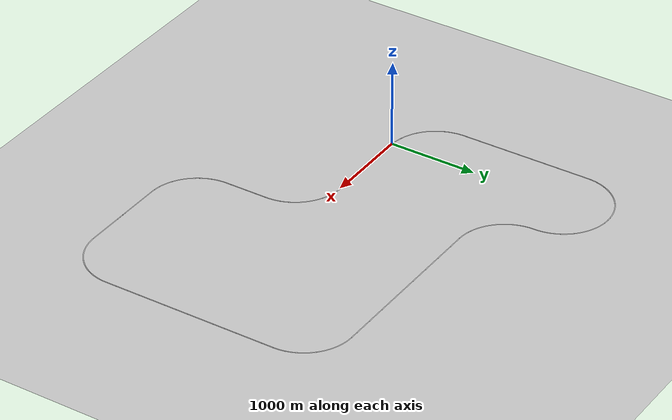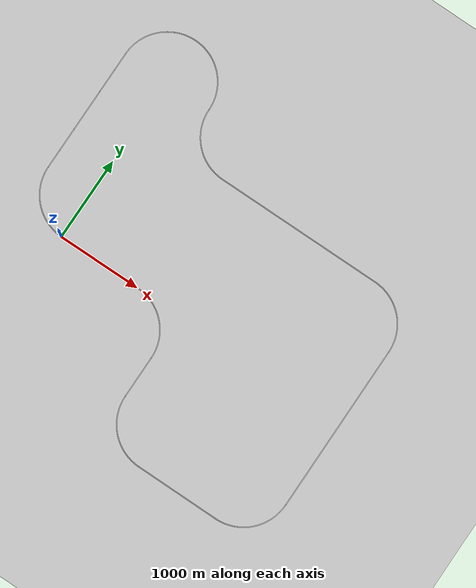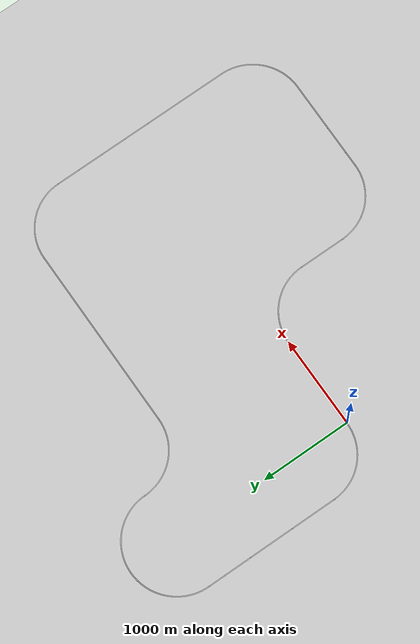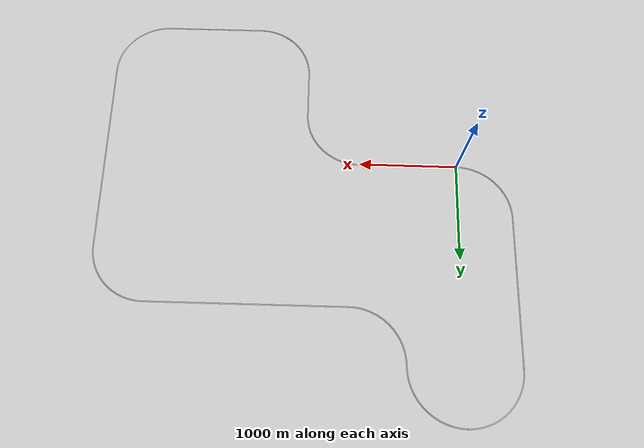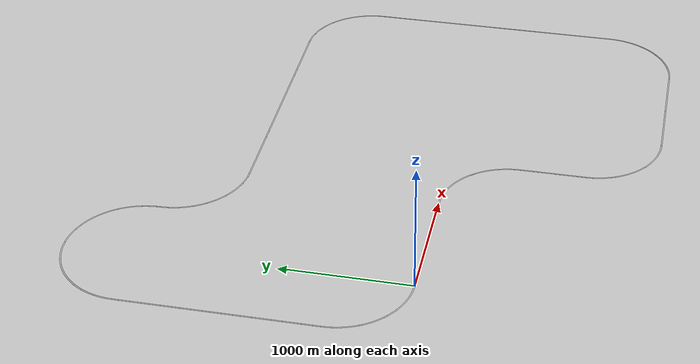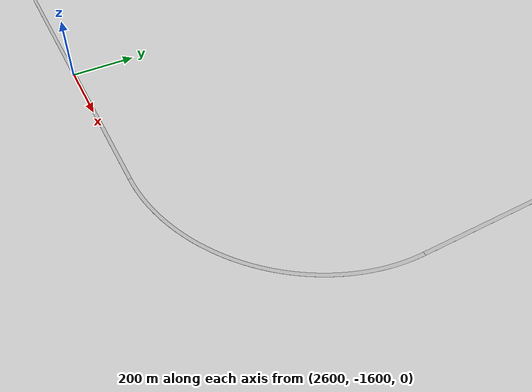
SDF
<sdf version="1.6">
 <world name="default">
  <light name="sun" type="directional">
   <pose>95.0196 103.283 10 0 -0 0</pose>
   <diffuse>0.8 0.8 0.8 1</diffuse>
   <specular>0.2 0.2 0.2 1</specular>
   <attenuation>
    <range>1000</range>
    <constant>0.9</constant>
    <linear>0.01</linear>
    <quadratic>0.001</quadratic>
   </attenuation>
   <direction>-0.5 0.1 -0.9</direction>
  </light>
  <gravity>0 0 -9.8</gravity>
  <magnetic_field>6e-06 2.3e-05 -4.2e-05</magnetic_field>
  <atmosphere type="adiabatic"/>
  <physics name="default_physics" default="0" type="ode">
   <max_step_size>0.001</max_step_size>
   <real_time_factor>1</real_time_factor>
   <real_time_update_rate>1000</real_time_update_rate>
  </physics>
  <scene><ambient>0.4 0.4 0.4 1</ambient><background>0.7 0.7 0.7 1</background><shadows>1</shadows></scene>
  <audio><device>default</device></audio>
  <spherical_coordinates>
   <surface_model>EARTH_WGS84</surface_model>
   <latitude_deg>0</latitude_deg>
   <longitude_deg>0</longitude_deg>
   <elevation>0</elevation>
   <heading_deg>0</heading_deg>
  </spherical_coordinates>
  <model name="ground_plane">
   <static>1</static>
   <link name="link">
    <collision name="collision">
     <geometry><plane><normal>0 0 1</normal><size>100 100</size></plane></geometry>
     <surface><friction><ode><mu>100</mu><mu2>50</mu2></ode></friction></surface>
    </collision>
    <visual name="visual">
     <cast_shadows>0</cast_shadows>
     <geometry><plane><normal>0 0 1</normal><size>10000 10000</size></plane></geometry>
     <material>
      <script><uri>file://media/materials/scripts/gazebo.material</uri><name>Gazebo/Grey</name></script>
     </material>
    </visual>
   </link>
  </model>
  <model name="(DS) Straight Road - 500m">
   <static>1</static>
   <link name="link">
    <inertial>
     <mass>1</mass>
     <inertia><ixx>1</ixx><iyy>1</iyy><izz>1</izz><ixy>0</ixy><ixz>0</ixz><iyz>0</iyz></inertia>
    </inertial>
    <collision name="collision">
     <geometry><mesh><uri>model://ds_straight_road_500m/meshes/straight_road_500m.dae</uri></mesh></geometry>
    </collision>
    <visual name="visual">
     <geometry><mesh><uri>model://ds_straight_road_500m/meshes/straight_road_500m.dae</uri></mesh></geometry>
    </visual>
   </link>
   <pose>249.987 12.203 0 0 -0 0</pose>
  </model>
  <model name="(DS) Straight Road - 500m_0">
   <static>1</static>
   <link name="link">
    <inertial>
     <mass>1</mass>
     <inertia><ixx>1</ixx><iyy>1</iyy><izz>1</izz><ixy>0</ixy><ixz>0</ixz><iyz>0</iyz></inertia>
    </inertial>
    <collision name="collision">
     <geometry><mesh><uri>model://ds_straight_road_500m/meshes/straight_road_500m.dae</uri></mesh></geometry>
    </collision>
    <visual name="visual">
     <geometry><mesh><uri>model://ds_straight_road_500m/meshes/straight_road_500m.dae</uri></mesh></geometry>
    </visual>
   </link>
   <pose>749.987 12.203 0 0 -0 0</pose>
  </model>
  <model name="(DS) Right Road - 1000m">
   <static>1</static>
   <link name="link">
    <inertial>
     <mass>1</mass>
     <inertia><ixx>1</ixx><iyy>1</iyy><izz>1</izz><ixy>0</ixy><ixz>0</ixz><iyz>0</iyz></inertia>
    </inertial>
    <collision name="collision">
     <geometry><mesh><uri>model://ds_right_road_1000m/meshes/curved_road_1000m.dae</uri></mesh></geometry>
    </collision>
    <visual name="visual">
     <geometry><mesh><uri>model://ds_right_road_1000m/meshes/curved_road_1000m.dae</uri></mesh></geometry>
    </visual>
   </link>
   <pose>1277.65 -269.962 0 0 -0 1.5708</pose>
  </model>
  <model name="(DS) Straight Road - 500m_1">
   <static>1</static>
   <link name="link">
    <inertial>
     <mass>1</mass>
     <inertia><ixx>1</ixx><iyy>1</iyy><izz>1</izz><ixy>0</ixy><ixz>0</ixz><iyz>0</iyz></inertia>
    </inertial>
    <collision name="collision">
     <geometry><mesh><uri>model://ds_straight_road_500m/meshes/straight_road_500m.dae</uri></mesh></geometry>
    </collision>
    <visual name="visual">
     <geometry><mesh><uri>model://ds_straight_road_500m/meshes/straight_road_500m.dae</uri></mesh></geometry>
    </visual>
   </link>
   <pose>1559.82 -797.627 0 0 0 -1.5708</pose>
  </model>
  <model name="(DS) Left Road - 1000m">
   <static>1</static>
   <link name="link">
    <inertial>
     <mass>1</mass>
     <inertia><ixx>1</ixx><iyy>1</iyy><izz>1</izz><ixy>0</ixy><ixz>0</ixz><iyz>0</iyz></inertia>
    </inertial>
    <collision name="collision">
     <geometry><mesh><uri>model://ds_left_road_1000m/meshes/curved_road_1000m.dae</uri></mesh></geometry>
    </collision>
    <visual name="visual">
     <geometry><mesh><uri>model://ds_left_road_1000m/meshes/curved_road_1000m.dae</uri></mesh></geometry>
    </visual>
   </link>
   <pose>1821.98 -1325.29 0 0 0 -1.5708</pose>
  </model>
  <model name="(DS) Straight Road - 500m_2">
   <static>1</static>
   <link name="link">
    <inertial>
     <mass>1</mass>
     <inertia><ixx>1</ixx><iyy>1</iyy><izz>1</izz><ixy>0</ixy><ixz>0</ixz><iyz>0</iyz></inertia>
    </inertial>
    <collision name="collision">
     <geometry><mesh><uri>model://ds_straight_road_500m/meshes/straight_road_500m.dae</uri></mesh></geometry>
    </collision>
    <visual name="visual">
     <geometry><mesh><uri>model://ds_straight_road_500m/meshes/straight_road_500m.dae</uri></mesh></geometry>
    </visual>
   </link>
   <pose>2349.65 -1587.46 0 0 -0 0</pose>
  </model>
  <model name="(DS) Straight Road - 500m_3">
   <static>1</static>
   <link name="link">
    <inertial>
     <mass>1</mass>
     <inertia><ixx>1</ixx><iyy>1</iyy><izz>1</izz><ixy>0</ixy><ixz>0</ixz><iyz>0</iyz></inertia>
    </inertial>
    <collision name="collision">
     <geometry><mesh><uri>model://ds_straight_road_500m/meshes/straight_road_500m.dae</uri></mesh></geometry>
    </collision>
    <visual name="visual">
     <geometry><mesh><uri>model://ds_straight_road_500m/meshes/straight_road_500m.dae</uri></mesh></geometry>
    </visual>
   </link>
   <pose>2849.65 -1587.46 0 0 -0 0</pose>
  </model>
  <model name="(DS) Left Road - 1000m_0">
   <static>1</static>
   <link name="link">
    <inertial>
     <mass>1</mass>
     <inertia><ixx>1</ixx><iyy>1</iyy><izz>1</izz><ixy>0</ixy><ixz>0</ixz><iyz>0</iyz></inertia>
    </inertial>
    <collision name="collision">
     <geometry><mesh><uri>model://ds_left_road_1000m/meshes/curved_road_1000m.dae</uri></mesh></geometry>
    </collision>
    <visual name="visual">
     <geometry><mesh><uri>model://ds_left_road_1000m/meshes/curved_road_1000m.dae</uri></mesh></geometry>
    </visual>
   </link>
   <pose>3377.31 -1325.29 0 0 -0 0</pose>
  </model>
  <model name="(DS) Straight Road - 2000m">
   <static>1</static>
   <link name="link">
    <inertial>
     <mass>1</mass>
     <inertia><ixx>1</ixx><iyy>1</iyy><izz>1</izz><ixy>0</ixy><ixz>0</ixz><iyz>0</iyz></inertia>
    </inertial>
    <collision name="collision">
     <geometry><mesh><uri>model://ds_straight_road_2000m/meshes/straight_road_2000m.dae</uri></mesh></geometry>
    </collision>
    <visual name="visual">
     <geometry><mesh><uri>model://ds_straight_road_2000m/meshes/straight_road_2000m.dae</uri></mesh></geometry>
    </visual>
   </link>
   <pose>3659.47 -47.6262 0 0 0 -1.5708</pose>
  </model>
  <model name="(DS) Left Road - 1000m_1">
   <static>1</static>
   <link name="link">
    <inertial>
     <mass>1</mass>
     <inertia><ixx>1</ixx><iyy>1</iyy><izz>1</izz><ixy>0</ixy><ixz>0</ixz><iyz>0</iyz></inertia>
    </inertial>
    <collision name="collision">
     <geometry><mesh><uri>model://ds_left_road_1000m/meshes/curved_road_1000m.dae</uri></mesh></geometry>
    </collision>
    <visual name="visual">
     <geometry><mesh><uri>model://ds_left_road_1000m/meshes/curved_road_1000m.dae</uri></mesh></geometry>
    </visual>
   </link>
   <pose>3377.31 1230.04 0 0 -0 1.5708</pose>
  </model>
  <model name="(DS) Straight Road - 2000m_0">
   <static>1</static>
   <link name="link">
    <inertial>
     <mass>1</mass>
     <inertia><ixx>1</ixx><iyy>1</iyy><izz>1</izz><ixy>0</ixy><ixz>0</ixz><iyz>0</iyz></inertia>
    </inertial>
    <collision name="collision">
     <geometry><mesh><uri>model://ds_straight_road_2000m/meshes/straight_road_2000m.dae</uri></mesh></geometry>
    </collision>
    <visual name="visual">
     <geometry><mesh><uri>model://ds_straight_road_2000m/meshes/straight_road_2000m.dae</uri></mesh></geometry>
    </visual>
   </link>
   <pose>2099.64 1512.2 0 0 -0 0</pose>
  </model>
  <model name="(DS) Right Road - 1000m_0">
   <static>1</static>
   <link name="link">
    <inertial>
     <mass>1</mass>
     <inertia><ixx>1</ixx><iyy>1</iyy><izz>1</izz><ixy>0</ixy><ixz>0</ixz><iyz>0</iyz></inertia>
    </inertial>
    <collision name="collision">
     <geometry><mesh><uri>model://ds_right_road_1000m/meshes/curved_road_1000m.dae</uri></mesh></geometry>
    </collision>
    <visual name="visual">
     <geometry><mesh><uri>model://ds_right_road_1000m/meshes/curved_road_1000m.dae</uri></mesh></geometry>
    </visual>
   </link>
   <pose>821.983 1774.37 0 0 0 -1.5708</pose>
  </model>
  <model name="(DS) Left Road - 1000m_2">
   <static>1</static>
   <link name="link">
    <inertial>
     <mass>1</mass>
     <inertia><ixx>1</ixx><iyy>1</iyy><izz>1</izz><ixy>0</ixy><ixz>0</ixz><iyz>0</iyz></inertia>
    </inertial>
    <collision name="collision">
     <geometry><mesh><uri>model://ds_left_road_1000m/meshes/curved_road_1000m.dae</uri></mesh></geometry>
    </collision>
    <visual name="visual">
     <geometry><mesh><uri>model://ds_left_road_1000m/meshes/curved_road_1000m.dae</uri></mesh></geometry>
    </visual>
   </link>
   <pose>277.652 2329.7 0 0 -0 1.5708</pose>
  </model>
  <model name="(DS) Left Road - 1000m_3">
   <static>1</static>
   <link name="link">
    <inertial>
     <mass>1</mass>
     <inertia><ixx>1</ixx><iyy>1</iyy><izz>1</izz><ixy>0</ixy><ixz>0</ixz><iyz>0</iyz></inertia>
    </inertial>
    <collision name="collision">
     <geometry><mesh><uri>model://ds_left_road_1000m/meshes/curved_road_1000m.dae</uri></mesh></geometry>
    </collision>
    <visual name="visual">
     <geometry><mesh><uri>model://ds_left_road_1000m/meshes/curved_road_1000m.dae</uri></mesh></geometry>
    </visual>
   </link>
   <pose>-277.679 2329.69 0 0 -0 3.14159</pose>
  </model>
  <model name="(DS) Straight Road - 500m_4">
   <static>1</static>
   <link name="link">
    <inertial>
     <mass>1</mass>
     <inertia><ixx>1</ixx><iyy>1</iyy><izz>1</izz><ixy>0</ixy><ixz>0</ixz><iyz>0</iyz></inertia>
    </inertial>
    <collision name="collision">
     <geometry><mesh><uri>model://ds_straight_road_500m/meshes/straight_road_500m.dae</uri></mesh></geometry>
    </collision>
    <visual name="visual">
     <geometry><mesh><uri>model://ds_straight_road_500m/meshes/straight_road_500m.dae</uri></mesh></geometry>
    </visual>
   </link>
   <pose>-539.844 1802.03 0 0 0 -1.5708</pose>
  </model>
  <model name="(DS) Straight Road - 500m_5">
   <static>1</static>
   <link name="link">
    <inertial>
     <mass>1</mass>
     <inertia><ixx>1</ixx><iyy>1</iyy><izz>1</izz><ixy>0</ixy><ixz>0</ixz><iyz>0</iyz></inertia>
    </inertial>
    <collision name="collision">
     <geometry><mesh><uri>model://ds_straight_road_500m/meshes/straight_road_500m.dae</uri></mesh></geometry>
    </collision>
    <visual name="visual">
     <geometry><mesh><uri>model://ds_straight_road_500m/meshes/straight_road_500m.dae</uri></mesh></geometry>
    </visual>
   </link>
   <pose>-539.844 1302.03 0 0 0 -1.5708</pose>
  </model>
  <model name="(DS) Straight Road - 500m_6">
   <static>1</static>
   <link name="link">
    <inertial>
     <mass>1</mass>
     <inertia><ixx>1</ixx><iyy>1</iyy><izz>1</izz><ixy>0</ixy><ixz>0</ixz><iyz>0</iyz></inertia>
    </inertial>
    <collision name="collision">
     <geometry><mesh><uri>model://ds_straight_road_500m/meshes/straight_road_500m.dae</uri></mesh></geometry>
    </collision>
    <visual name="visual">
     <geometry><mesh><uri>model://ds_straight_road_500m/meshes/straight_road_500m.dae</uri></mesh></geometry>
    </visual>
   </link>
   <pose>-539.845 802.029 0 0 0 -1.5708</pose>
  </model>
  <model name="(DS) Left Road - 1000m_4">
   <static>1</static>
   <link name="link">
    <inertial>
     <mass>1</mass>
     <inertia><ixx>1</ixx><iyy>1</iyy><izz>1</izz><ixy>0</ixy><ixz>0</ixz><iyz>0</iyz></inertia>
    </inertial>
    <collision name="collision">
     <geometry><mesh><uri>model://ds_left_road_1000m/meshes/curved_road_1000m.dae</uri></mesh></geometry>
    </collision>
    <visual name="visual">
     <geometry><mesh><uri>model://ds_left_road_1000m/meshes/curved_road_1000m.dae</uri></mesh></geometry>
    </visual>
   </link>
   <pose>-277.679 274.364 0 0 0 -1.5708</pose>
  </model>
 </world>
</sdf>
